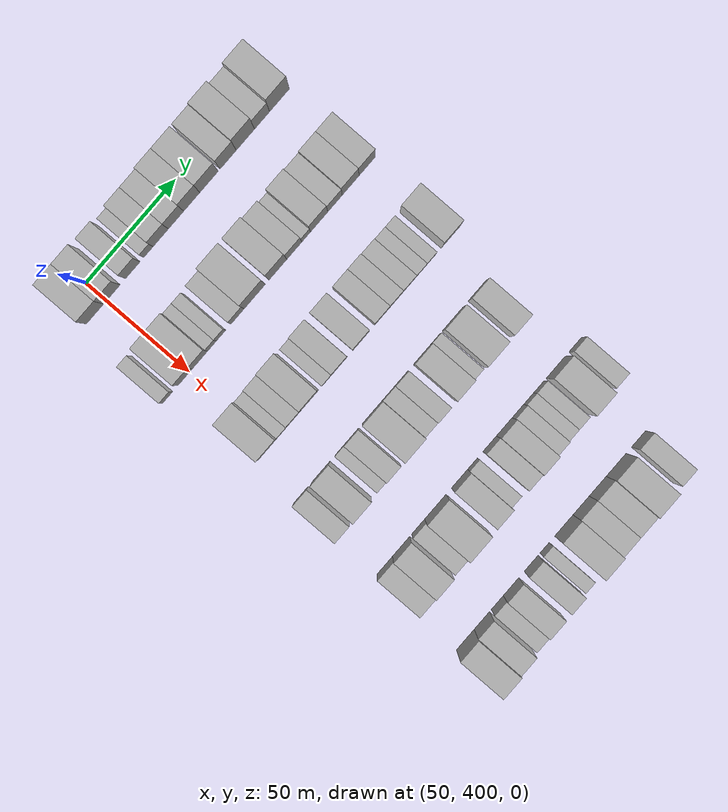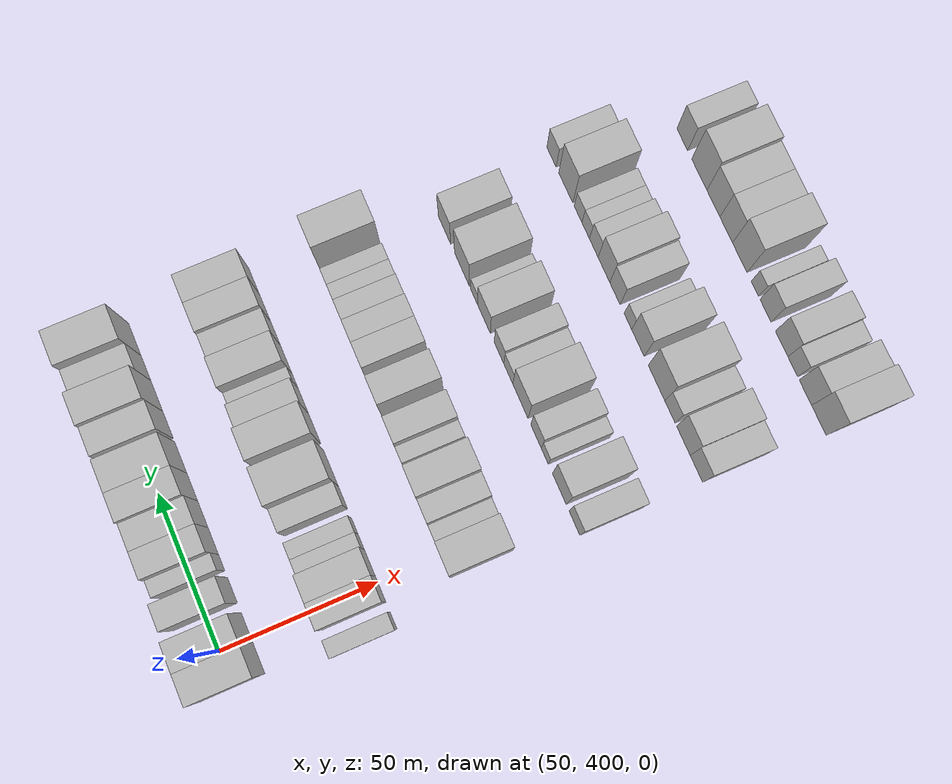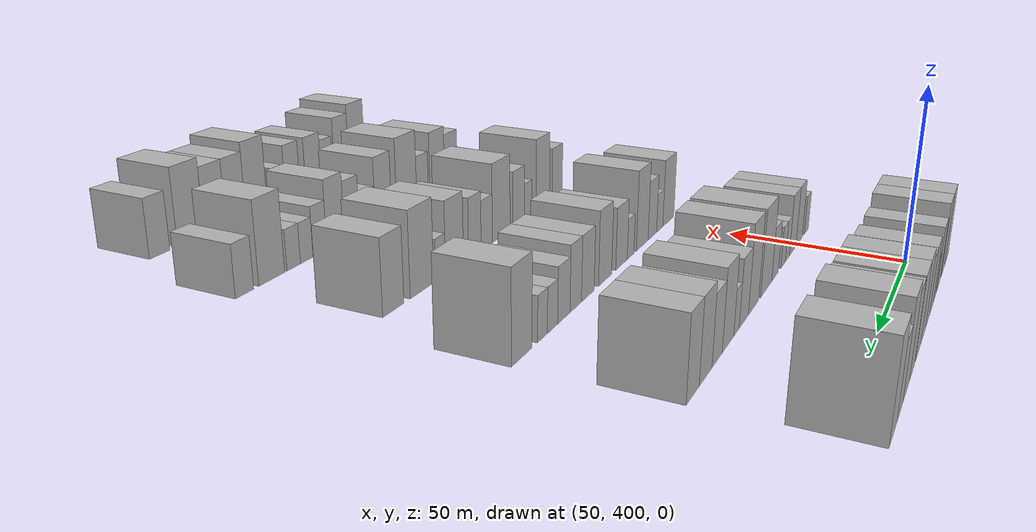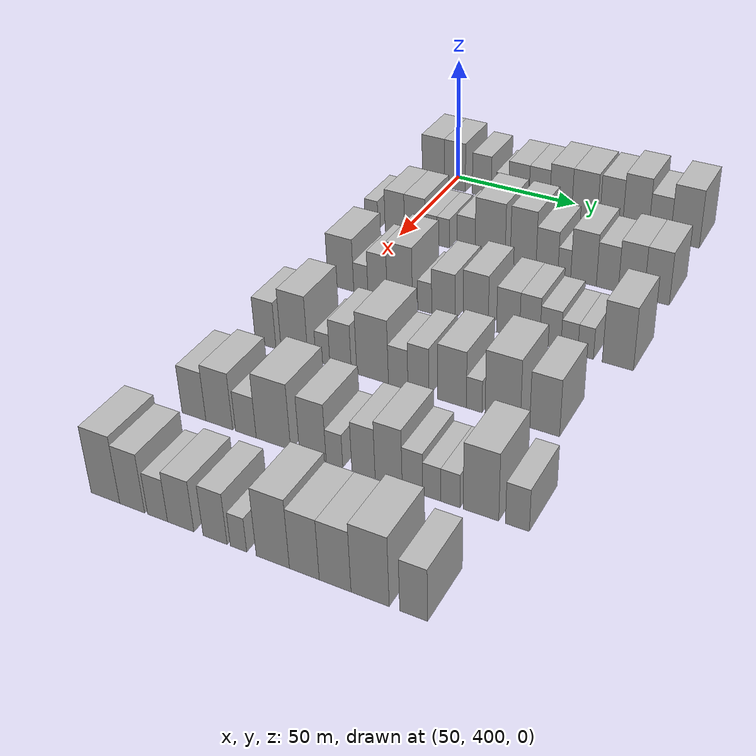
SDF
<sdf version="1.6">
 <world name="default">
  <model name="building_107">
   <static>1</static>
   <pose>50.0000 393.6798 0 0.000000 0.000000 0.000000</pose>
   <link name="link">
    <pose>0 0 10.50 0 0 0</pose>
    <collision name="collision"><geometry><box><size>20.0000 9.6630 21.0000</size></box></geometry></collision>
    <visual name="visual">
     <cast_shadows>0</cast_shadows>
     <geometry><box><size>20.0000 9.6630 21.0000</size></box></geometry>
     <material>
      <script>
       <uri>model://HANNAS_wall/materials/scripts</uri>
       <uri>model://HANNAS_wall/materials/textures</uri>
       <name>vrc/HANNAS_wall</name>
      </script>
     </material>
    </visual>
   </link>
  </model>
  <model name="building_108">
   <static>1</static>
   <pose>50.0000 403.1124 0 0.000000 0.000000 0.000000</pose>
   <link name="link">
    <pose>0 0 10.50 0 0 0</pose>
    <collision name="collision"><geometry><box><size>20.0000 9.2023 21.0000</size></box></geometry></collision>
    <visual name="visual">
     <cast_shadows>0</cast_shadows>
     <geometry><box><size>20.0000 9.2023 21.0000</size></box></geometry>
     <material>
      <script>
       <uri>model://HANNAS_wall/materials/scripts</uri>
       <uri>model://HANNAS_wall/materials/textures</uri>
       <name>vrc/HANNAS_wall</name>
      </script>
     </material>
    </visual>
   </link>
  </model>
  <model name="building_109">
   <static>1</static>
   <pose>50.0000 414.7818 0 0.000000 0.000000 0.000000</pose>
   <link name="link">
    <pose>0 0 9.00 0 0 0</pose>
    <collision name="collision"><geometry><box><size>20.0000 8.1363 18.0000</size></box></geometry></collision>
    <visual name="visual">
     <cast_shadows>0</cast_shadows>
     <geometry><box><size>20.0000 8.1363 18.0000</size></box></geometry>
     <material>
      <script>
       <uri>model://HANNAS_wall/materials/scripts</uri>
       <uri>model://HANNAS_wall/materials/textures</uri>
       <name>vrc/HANNAS_wall</name>
      </script>
     </material>
    </visual>
   </link>
  </model>
  <model name="building_110">
   <static>1</static>
   <pose>50.0000 423.4730 0 0.000000 0.000000 0.000000</pose>
   <link name="link">
    <pose>0 0 6.00 0 0 0</pose>
    <collision name="collision"><geometry><box><size>20.0000 5.2460 12.0000</size></box></geometry></collision>
    <visual name="visual">
     <cast_shadows>0</cast_shadows>
     <geometry><box><size>20.0000 5.2460 12.0000</size></box></geometry>
     <material>
      <script>
       <uri>model://HANNAS_wall/materials/scripts</uri>
       <uri>model://HANNAS_wall/materials/textures</uri>
       <name>vrc/HANNAS_wall</name>
      </script>
     </material>
    </visual>
   </link>
  </model>
  <model name="building_111">
   <static>1</static>
   <pose>50.0000 430.3826 0 0.000000 0.000000 0.000000</pose>
   <link name="link">
    <pose>0 0 9.00 0 0 0</pose>
    <collision name="collision"><geometry><box><size>20.0000 8.5733 18.0000</size></box></geometry></collision>
    <visual name="visual">
     <cast_shadows>0</cast_shadows>
     <geometry><box><size>20.0000 8.5733 18.0000</size></box></geometry>
     <material>
      <script>
       <uri>model://HANNAS_wall/materials/scripts</uri>
       <uri>model://HANNAS_wall/materials/textures</uri>
       <name>vrc/HANNAS_wall</name>
      </script>
     </material>
    </visual>
   </link>
  </model>
  <model name="building_112">
   <static>1</static>
   <pose>50.0000 438.9476 0 0.000000 0.000000 0.000000</pose>
   <link name="link">
    <pose>0 0 9.00 0 0 0</pose>
    <collision name="collision"><geometry><box><size>20.0000 8.5567 18.0000</size></box></geometry></collision>
    <visual name="visual">
     <cast_shadows>0</cast_shadows>
     <geometry><box><size>20.0000 8.5567 18.0000</size></box></geometry>
     <material>
      <script>
       <uri>model://HANNAS_wall/materials/scripts</uri>
       <uri>model://HANNAS_wall/materials/textures</uri>
       <name>vrc/HANNAS_wall</name>
      </script>
     </material>
    </visual>
   </link>
  </model>
  <model name="building_113">
   <static>1</static>
   <pose>50.0000 447.7364 0 0.000000 0.000000 0.000000</pose>
   <link name="link">
    <pose>0 0 10.50 0 0 0</pose>
    <collision name="collision"><geometry><box><size>20.0000 9.0210 21.0000</size></box></geometry></collision>
    <visual name="visual">
     <cast_shadows>0</cast_shadows>
     <geometry><box><size>20.0000 9.0210 21.0000</size></box></geometry>
     <material>
      <script>
       <uri>model://HANNAS_wall/materials/scripts</uri>
       <uri>model://HANNAS_wall/materials/textures</uri>
       <name>vrc/HANNAS_wall</name>
      </script>
     </material>
    </visual>
   </link>
  </model>
  <model name="building_114">
   <static>1</static>
   <pose>50.0000 457.3756 0 0.000000 0.000000 0.000000</pose>
   <link name="link">
    <pose>0 0 10.50 0 0 0</pose>
    <collision name="collision"><geometry><box><size>20.0000 10.2574 21.0000</size></box></geometry></collision>
    <visual name="visual">
     <cast_shadows>0</cast_shadows>
     <geometry><box><size>20.0000 10.2574 21.0000</size></box></geometry>
     <material>
      <script>
       <uri>model://HANNAS_wall/materials/scripts</uri>
       <uri>model://HANNAS_wall/materials/textures</uri>
       <name>vrc/HANNAS_wall</name>
      </script>
     </material>
    </visual>
   </link>
  </model>
  <model name="building_115">
   <static>1</static>
   <pose>50.0000 468.0371 0 0.000000 0.000000 0.000000</pose>
   <link name="link">
    <pose>0 0 10.50 0 0 0</pose>
    <collision name="collision"><geometry><box><size>20.0000 9.0657 21.0000</size></box></geometry></collision>
    <visual name="visual">
     <cast_shadows>0</cast_shadows>
     <geometry><box><size>20.0000 9.0657 21.0000</size></box></geometry>
     <material>
      <script>
       <uri>model://HANNAS_wall/materials/scripts</uri>
       <uri>model://HANNAS_wall/materials/textures</uri>
       <name>vrc/HANNAS_wall</name>
      </script>
     </material>
    </visual>
   </link>
  </model>
  <model name="building_116">
   <static>1</static>
   <pose>50.0000 477.6717 0 0.000000 0.000000 0.000000</pose>
   <link name="link">
    <pose>0 0 12.00 0 0 0</pose>
    <collision name="collision"><geometry><box><size>20.0000 10.2034 24.0000</size></box></geometry></collision>
    <visual name="visual">
     <cast_shadows>0</cast_shadows>
     <geometry><box><size>20.0000 10.2034 24.0000</size></box></geometry>
     <material>
      <script>
       <uri>model://HANNAS_wall/materials/scripts</uri>
       <uri>model://HANNAS_wall/materials/textures</uri>
       <name>vrc/HANNAS_wall</name>
      </script>
     </material>
    </visual>
   </link>
  </model>
  <model name="building_117">
   <static>1</static>
   <pose>50.0000 486.9649 0 0.000000 0.000000 0.000000</pose>
   <link name="link">
    <pose>0 0 9.00 0 0 0</pose>
    <collision name="collision"><geometry><box><size>20.0000 8.3829 18.0000</size></box></geometry></collision>
    <visual name="visual">
     <cast_shadows>0</cast_shadows>
     <geometry><box><size>20.0000 8.3829 18.0000</size></box></geometry>
     <material>
      <script>
       <uri>model://HANNAS_wall/materials/scripts</uri>
       <uri>model://HANNAS_wall/materials/textures</uri>
       <name>vrc/HANNAS_wall</name>
      </script>
     </material>
    </visual>
   </link>
  </model>
  <model name="building_118">
   <static>1</static>
   <pose>50.0000 496.6654 0 0.000000 0.000000 0.000000</pose>
   <link name="link">
    <pose>0 0 12.00 0 0 0</pose>
    <collision name="collision"><geometry><box><size>20.0000 11.0180 24.0000</size></box></geometry></collision>
    <visual name="visual">
     <cast_shadows>0</cast_shadows>
     <geometry><box><size>20.0000 11.0180 24.0000</size></box></geometry>
     <material>
      <script>
       <uri>model://HANNAS_wall/materials/scripts</uri>
       <uri>model://HANNAS_wall/materials/textures</uri>
       <name>vrc/HANNAS_wall</name>
      </script>
     </material>
    </visual>
   </link>
  </model>
  <model name="building_239">
   <static>1</static>
   <pose>90.0000 388.0241 0 0.000000 0.000000 0.000000</pose>
   <link name="link">
    <pose>0 0 6.00 0 0 0</pose>
    <collision name="collision"><geometry><box><size>20.0000 5.4615 12.0000</size></box></geometry></collision>
    <visual name="visual">
     <cast_shadows>0</cast_shadows>
     <geometry><box><size>20.0000 5.4615 12.0000</size></box></geometry>
     <material>
      <script>
       <uri>model://HANNAS_wall/materials/scripts</uri>
       <uri>model://HANNAS_wall/materials/textures</uri>
       <name>vrc/HANNAS_wall</name>
      </script>
     </material>
    </visual>
   </link>
  </model>
  <model name="building_240">
   <static>1</static>
   <pose>90.0000 397.8264 0 0.000000 0.000000 0.000000</pose>
   <link name="link">
    <pose>0 0 9.00 0 0 0</pose>
    <collision name="collision"><geometry><box><size>20.0000 8.1431 18.0000</size></box></geometry></collision>
    <visual name="visual">
     <cast_shadows>0</cast_shadows>
     <geometry><box><size>20.0000 8.1431 18.0000</size></box></geometry>
     <material>
      <script>
       <uri>model://HANNAS_wall/materials/scripts</uri>
       <uri>model://HANNAS_wall/materials/textures</uri>
       <name>vrc/HANNAS_wall</name>
      </script>
     </material>
    </visual>
   </link>
  </model>
  <model name="building_241">
   <static>1</static>
   <pose>90.0000 406.1537 0 0.000000 0.000000 0.000000</pose>
   <link name="link">
    <pose>0 0 9.00 0 0 0</pose>
    <collision name="collision"><geometry><box><size>20.0000 8.5114 18.0000</size></box></geometry></collision>
    <visual name="visual">
     <cast_shadows>0</cast_shadows>
     <geometry><box><size>20.0000 8.5114 18.0000</size></box></geometry>
     <material>
      <script>
       <uri>model://HANNAS_wall/materials/scripts</uri>
       <uri>model://HANNAS_wall/materials/textures</uri>
       <name>vrc/HANNAS_wall</name>
      </script>
     </material>
    </visual>
   </link>
  </model>
  <model name="building_242">
   <static>1</static>
   <pose>90.0000 412.8248 0 0.000000 0.000000 0.000000</pose>
   <link name="link">
    <pose>0 0 6.00 0 0 0</pose>
    <collision name="collision"><geometry><box><size>20.0000 4.8308 12.0000</size></box></geometry></collision>
    <visual name="visual">
     <cast_shadows>0</cast_shadows>
     <geometry><box><size>20.0000 4.8308 12.0000</size></box></geometry>
     <material>
      <script>
       <uri>model://HANNAS_wall/materials/scripts</uri>
       <uri>model://HANNAS_wall/materials/textures</uri>
       <name>vrc/HANNAS_wall</name>
      </script>
     </material>
    </visual>
   </link>
  </model>
  <model name="building_243">
   <static>1</static>
   <pose>90.0000 417.8069 0 0.000000 0.000000 0.000000</pose>
   <link name="link">
    <pose>0 0 6.00 0 0 0</pose>
    <collision name="collision"><geometry><box><size>20.0000 5.1335 12.0000</size></box></geometry></collision>
    <visual name="visual">
     <cast_shadows>0</cast_shadows>
     <geometry><box><size>20.0000 5.1335 12.0000</size></box></geometry>
     <material>
      <script>
       <uri>model://HANNAS_wall/materials/scripts</uri>
       <uri>model://HANNAS_wall/materials/textures</uri>
       <name>vrc/HANNAS_wall</name>
      </script>
     </material>
    </visual>
   </link>
  </model>
  <model name="building_244">
   <static>1</static>
   <pose>90.0000 427.0387 0 0.000000 0.000000 0.000000</pose>
   <link name="link">
    <pose>0 0 7.50 0 0 0</pose>
    <collision name="collision"><geometry><box><size>20.0000 7.3300 15.0000</size></box></geometry></collision>
    <visual name="visual">
     <cast_shadows>0</cast_shadows>
     <geometry><box><size>20.0000 7.3300 15.0000</size></box></geometry>
     <material>
      <script>
       <uri>model://HANNAS_wall/materials/scripts</uri>
       <uri>model://HANNAS_wall/materials/textures</uri>
       <name>vrc/HANNAS_wall</name>
      </script>
     </material>
    </visual>
   </link>
  </model>
  <model name="building_245">
   <static>1</static>
   <pose>90.0000 436.6165 0 0.000000 0.000000 0.000000</pose>
   <link name="link">
    <pose>0 0 12.00 0 0 0</pose>
    <collision name="collision"><geometry><box><size>20.0000 11.8256 24.0000</size></box></geometry></collision>
    <visual name="visual">
     <cast_shadows>0</cast_shadows>
     <geometry><box><size>20.0000 11.8256 24.0000</size></box></geometry>
     <material>
      <script>
       <uri>model://HANNAS_wall/materials/scripts</uri>
       <uri>model://HANNAS_wall/materials/textures</uri>
       <name>vrc/HANNAS_wall</name>
      </script>
     </material>
    </visual>
   </link>
  </model>
  <model name="building_246">
   <static>1</static>
   <pose>90.0000 449.5167 0 0.000000 0.000000 0.000000</pose>
   <link name="link">
    <pose>0 0 12.00 0 0 0</pose>
    <collision name="collision"><geometry><box><size>20.0000 9.9747 24.0000</size></box></geometry></collision>
    <visual name="visual">
     <cast_shadows>0</cast_shadows>
     <geometry><box><size>20.0000 9.9747 24.0000</size></box></geometry>
     <material>
      <script>
       <uri>model://HANNAS_wall/materials/scripts</uri>
       <uri>model://HANNAS_wall/materials/textures</uri>
       <name>vrc/HANNAS_wall</name>
      </script>
     </material>
    </visual>
   </link>
  </model>
  <model name="building_247">
   <static>1</static>
   <pose>90.0000 458.6944 0 0.000000 0.000000 0.000000</pose>
   <link name="link">
    <pose>0 0 9.00 0 0 0</pose>
    <collision name="collision"><geometry><box><size>20.0000 8.3806 18.0000</size></box></geometry></collision>
    <visual name="visual">
     <cast_shadows>0</cast_shadows>
     <geometry><box><size>20.0000 8.3806 18.0000</size></box></geometry>
     <material>
      <script>
       <uri>model://HANNAS_wall/materials/scripts</uri>
       <uri>model://HANNAS_wall/materials/textures</uri>
       <name>vrc/HANNAS_wall</name>
      </script>
     </material>
    </visual>
   </link>
  </model>
  <model name="building_248">
   <static>1</static>
   <pose>90.0000 465.2968 0 0.000000 0.000000 0.000000</pose>
   <link name="link">
    <pose>0 0 6.00 0 0 0</pose>
    <collision name="collision"><geometry><box><size>20.0000 4.8242 12.0000</size></box></geometry></collision>
    <visual name="visual">
     <cast_shadows>0</cast_shadows>
     <geometry><box><size>20.0000 4.8242 12.0000</size></box></geometry>
     <material>
      <script>
       <uri>model://HANNAS_wall/materials/scripts</uri>
       <uri>model://HANNAS_wall/materials/textures</uri>
       <name>vrc/HANNAS_wall</name>
      </script>
     </material>
    </visual>
   </link>
  </model>
  <model name="building_249">
   <static>1</static>
   <pose>90.0000 472.4973 0 0.000000 0.000000 0.000000</pose>
   <link name="link">
    <pose>0 0 10.50 0 0 0</pose>
    <collision name="collision"><geometry><box><size>20.0000 9.5768 21.0000</size></box></geometry></collision>
    <visual name="visual">
     <cast_shadows>0</cast_shadows>
     <geometry><box><size>20.0000 9.5768 21.0000</size></box></geometry>
     <material>
      <script>
       <uri>model://HANNAS_wall/materials/scripts</uri>
       <uri>model://HANNAS_wall/materials/textures</uri>
       <name>vrc/HANNAS_wall</name>
      </script>
     </material>
    </visual>
   </link>
  </model>
  <model name="building_250">
   <static>1</static>
   <pose>90.0000 481.3107 0 0.000000 0.000000 0.000000</pose>
   <link name="link">
    <pose>0 0 9.00 0 0 0</pose>
    <collision name="collision"><geometry><box><size>20.0000 8.0500 18.0000</size></box></geometry></collision>
    <visual name="visual">
     <cast_shadows>0</cast_shadows>
     <geometry><box><size>20.0000 8.0500 18.0000</size></box></geometry>
     <material>
      <script>
       <uri>model://HANNAS_wall/materials/scripts</uri>
       <uri>model://HANNAS_wall/materials/textures</uri>
       <name>vrc/HANNAS_wall</name>
      </script>
     </material>
    </visual>
   </link>
  </model>
  <model name="building_251">
   <static>1</static>
   <pose>90.0000 490.0114 0 0.000000 0.000000 0.000000</pose>
   <link name="link">
    <pose>0 0 10.50 0 0 0</pose>
    <collision name="collision"><geometry><box><size>20.0000 9.3514 21.0000</size></box></geometry></collision>
    <visual name="visual">
     <cast_shadows>0</cast_shadows>
     <geometry><box><size>20.0000 9.3514 21.0000</size></box></geometry>
     <material>
      <script>
       <uri>model://HANNAS_wall/materials/scripts</uri>
       <uri>model://HANNAS_wall/materials/textures</uri>
       <name>vrc/HANNAS_wall</name>
      </script>
     </material>
    </visual>
   </link>
  </model>
  <model name="building_252">
   <static>1</static>
   <pose>90.0000 499.2103 0 0.000000 0.000000 0.000000</pose>
   <link name="link">
    <pose>0 0 10.50 0 0 0</pose>
    <collision name="collision"><geometry><box><size>20.0000 9.0464 21.0000</size></box></geometry></collision>
    <visual name="visual">
     <cast_shadows>0</cast_shadows>
     <geometry><box><size>20.0000 9.0464 21.0000</size></box></geometry>
     <material>
      <script>
       <uri>model://HANNAS_wall/materials/scripts</uri>
       <uri>model://HANNAS_wall/materials/textures</uri>
       <name>vrc/HANNAS_wall</name>
      </script>
     </material>
    </visual>
   </link>
  </model>
  <model name="building_372">
   <static>1</static>
   <pose>130.0000 397.9656 0 0.000000 0.000000 0.000000</pose>
   <link name="link">
    <pose>0 0 10.50 0 0 0</pose>
    <collision name="collision"><geometry><box><size>20.0000 10.3164 21.0000</size></box></geometry></collision>
    <visual name="visual">
     <cast_shadows>0</cast_shadows>
     <geometry><box><size>20.0000 10.3164 21.0000</size></box></geometry>
     <material>
      <script>
       <uri>model://HANNAS_wall/materials/scripts</uri>
       <uri>model://HANNAS_wall/materials/textures</uri>
       <name>vrc/HANNAS_wall</name>
      </script>
     </material>
    </visual>
   </link>
  </model>
  <model name="building_373">
   <static>1</static>
   <pose>130.0000 405.9312 0 0.000000 0.000000 0.000000</pose>
   <link name="link">
    <pose>0 0 6.00 0 0 0</pose>
    <collision name="collision"><geometry><box><size>20.0000 5.6148 12.0000</size></box></geometry></collision>
    <visual name="visual">
     <cast_shadows>0</cast_shadows>
     <geometry><box><size>20.0000 5.6148 12.0000</size></box></geometry>
     <material>
      <script>
       <uri>model://HANNAS_wall/materials/scripts</uri>
       <uri>model://HANNAS_wall/materials/textures</uri>
       <name>vrc/HANNAS_wall</name>
      </script>
     </material>
    </visual>
   </link>
  </model>
  <model name="building_374">
   <static>1</static>
   <pose>130.0000 412.4982 0 0.000000 0.000000 0.000000</pose>
   <link name="link">
    <pose>0 0 9.00 0 0 0</pose>
    <collision name="collision"><geometry><box><size>20.0000 7.5192 18.0000</size></box></geometry></collision>
    <visual name="visual">
     <cast_shadows>0</cast_shadows>
     <geometry><box><size>20.0000 7.5192 18.0000</size></box></geometry>
     <material>
      <script>
       <uri>model://HANNAS_wall/materials/scripts</uri>
       <uri>model://HANNAS_wall/materials/textures</uri>
       <name>vrc/HANNAS_wall</name>
      </script>
     </material>
    </visual>
   </link>
  </model>
  <model name="building_375">
   <static>1</static>
   <pose>130.0000 421.1423 0 0.000000 0.000000 0.000000</pose>
   <link name="link">
    <pose>0 0 12.00 0 0 0</pose>
    <collision name="collision"><geometry><box><size>20.0000 9.7689 24.0000</size></box></geometry></collision>
    <visual name="visual">
     <cast_shadows>0</cast_shadows>
     <geometry><box><size>20.0000 9.7689 24.0000</size></box></geometry>
     <material>
      <script>
       <uri>model://HANNAS_wall/materials/scripts</uri>
       <uri>model://HANNAS_wall/materials/textures</uri>
       <name>vrc/HANNAS_wall</name>
      </script>
     </material>
    </visual>
   </link>
  </model>
  <model name="building_376">
   <static>1</static>
   <pose>130.0000 430.6734 0 0.000000 0.000000 0.000000</pose>
   <link name="link">
    <pose>0 0 6.00 0 0 0</pose>
    <collision name="collision"><geometry><box><size>20.0000 5.2932 12.0000</size></box></geometry></collision>
    <visual name="visual">
     <cast_shadows>0</cast_shadows>
     <geometry><box><size>20.0000 5.2932 12.0000</size></box></geometry>
     <material>
      <script>
       <uri>model://HANNAS_wall/materials/scripts</uri>
       <uri>model://HANNAS_wall/materials/textures</uri>
       <name>vrc/HANNAS_wall</name>
      </script>
     </material>
    </visual>
   </link>
  </model>
  <model name="building_377">
   <static>1</static>
   <pose>130.0000 437.6618 0 0.000000 0.000000 0.000000</pose>
   <link name="link">
    <pose>0 0 9.00 0 0 0</pose>
    <collision name="collision"><geometry><box><size>20.0000 8.6837 18.0000</size></box></geometry></collision>
    <visual name="visual">
     <cast_shadows>0</cast_shadows>
     <geometry><box><size>20.0000 8.6837 18.0000</size></box></geometry>
     <material>
      <script>
       <uri>model://HANNAS_wall/materials/scripts</uri>
       <uri>model://HANNAS_wall/materials/textures</uri>
       <name>vrc/HANNAS_wall</name>
      </script>
     </material>
    </visual>
   </link>
  </model>
  <model name="building_378">
   <static>1</static>
   <pose>130.0000 449.6315 0 0.000000 0.000000 0.000000</pose>
   <link name="link">
    <pose>0 0 10.50 0 0 0</pose>
    <collision name="collision"><geometry><box><size>20.0000 9.2556 21.0000</size></box></geometry></collision>
    <visual name="visual">
     <cast_shadows>0</cast_shadows>
     <geometry><box><size>20.0000 9.2556 21.0000</size></box></geometry>
     <material>
      <script>
       <uri>model://HANNAS_wall/materials/scripts</uri>
       <uri>model://HANNAS_wall/materials/textures</uri>
       <name>vrc/HANNAS_wall</name>
      </script>
     </material>
    </visual>
   </link>
  </model>
  <model name="building_379">
   <static>1</static>
   <pose>130.0000 461.3996 0 0.000000 0.000000 0.000000</pose>
   <link name="link">
    <pose>0 0 9.00 0 0 0</pose>
    <collision name="collision"><geometry><box><size>20.0000 8.2807 18.0000</size></box></geometry></collision>
    <visual name="visual">
     <cast_shadows>0</cast_shadows>
     <geometry><box><size>20.0000 8.2807 18.0000</size></box></geometry>
     <material>
      <script>
       <uri>model://HANNAS_wall/materials/scripts</uri>
       <uri>model://HANNAS_wall/materials/textures</uri>
       <name>vrc/HANNAS_wall</name>
      </script>
     </material>
    </visual>
   </link>
  </model>
  <model name="building_380">
   <static>1</static>
   <pose>130.0000 469.1529 0 0.000000 0.000000 0.000000</pose>
   <link name="link">
    <pose>0 0 9.00 0 0 0</pose>
    <collision name="collision"><geometry><box><size>20.0000 7.2259 18.0000</size></box></geometry></collision>
    <visual name="visual">
     <cast_shadows>0</cast_shadows>
     <geometry><box><size>20.0000 7.2259 18.0000</size></box></geometry>
     <material>
      <script>
       <uri>model://HANNAS_wall/materials/scripts</uri>
       <uri>model://HANNAS_wall/materials/textures</uri>
       <name>vrc/HANNAS_wall</name>
      </script>
     </material>
    </visual>
   </link>
  </model>
  <model name="building_381">
   <static>1</static>
   <pose>130.0000 476.4479 0 0.000000 0.000000 0.000000</pose>
   <link name="link">
    <pose>0 0 7.50 0 0 0</pose>
    <collision name="collision"><geometry><box><size>20.0000 7.3641 15.0000</size></box></geometry></collision>
    <visual name="visual">
     <cast_shadows>0</cast_shadows>
     <geometry><box><size>20.0000 7.3641 15.0000</size></box></geometry>
     <material>
      <script>
       <uri>model://HANNAS_wall/materials/scripts</uri>
       <uri>model://HANNAS_wall/materials/textures</uri>
       <name>vrc/HANNAS_wall</name>
      </script>
     </material>
    </visual>
   </link>
  </model>
  <model name="building_382">
   <static>1</static>
   <pose>130.0000 483.0537 0 0.000000 0.000000 0.000000</pose>
   <link name="link">
    <pose>0 0 6.00 0 0 0</pose>
    <collision name="collision"><geometry><box><size>20.0000 5.8475 12.0000</size></box></geometry></collision>
    <visual name="visual">
     <cast_shadows>0</cast_shadows>
     <geometry><box><size>20.0000 5.8475 12.0000</size></box></geometry>
     <material>
      <script>
       <uri>model://HANNAS_wall/materials/scripts</uri>
       <uri>model://HANNAS_wall/materials/textures</uri>
       <name>vrc/HANNAS_wall</name>
      </script>
     </material>
    </visual>
   </link>
  </model>
  <model name="building_383">
   <static>1</static>
   <pose>130.0000 488.6672 0 0.000000 0.000000 0.000000</pose>
   <link name="link">
    <pose>0 0 6.00 0 0 0</pose>
    <collision name="collision"><geometry><box><size>20.0000 5.3795 12.0000</size></box></geometry></collision>
    <visual name="visual">
     <cast_shadows>0</cast_shadows>
     <geometry><box><size>20.0000 5.3795 12.0000</size></box></geometry>
     <material>
      <script>
       <uri>model://HANNAS_wall/materials/scripts</uri>
       <uri>model://HANNAS_wall/materials/textures</uri>
       <name>vrc/HANNAS_wall</name>
      </script>
     </material>
    </visual>
   </link>
  </model>
  <model name="building_384">
   <static>1</static>
   <pose>130.0000 499.6014 0 0.000000 0.000000 0.000000</pose>
   <link name="link">
    <pose>0 0 12.00 0 0 0</pose>
    <collision name="collision"><geometry><box><size>20.0000 10.4891 24.0000</size></box></geometry></collision>
    <visual name="visual">
     <cast_shadows>0</cast_shadows>
     <geometry><box><size>20.0000 10.4891 24.0000</size></box></geometry>
     <material>
      <script>
       <uri>model://HANNAS_wall/materials/scripts</uri>
       <uri>model://HANNAS_wall/materials/textures</uri>
       <name>vrc/HANNAS_wall</name>
      </script>
     </material>
    </visual>
   </link>
  </model>
  <model name="building_508">
   <static>1</static>
   <pose>170.0000 392.9907 0 0.000000 0.000000 0.000000</pose>
   <link name="link">
    <pose>0 0 9.00 0 0 0</pose>
    <collision name="collision"><geometry><box><size>20.0000 7.8994 18.0000</size></box></geometry></collision>
    <visual name="visual">
     <cast_shadows>0</cast_shadows>
     <geometry><box><size>20.0000 7.8994 18.0000</size></box></geometry>
     <material>
      <script>
       <uri>model://HANNAS_wall/materials/scripts</uri>
       <uri>model://HANNAS_wall/materials/textures</uri>
       <name>vrc/HANNAS_wall</name>
      </script>
     </material>
    </visual>
   </link>
  </model>
  <model name="building_509">
   <static>1</static>
   <pose>170.0000 403.9737 0 0.000000 0.000000 0.000000</pose>
   <link name="link">
    <pose>0 0 12.00 0 0 0</pose>
    <collision name="collision"><geometry><box><size>20.0000 10.0667 24.0000</size></box></geometry></collision>
    <visual name="visual">
     <cast_shadows>0</cast_shadows>
     <geometry><box><size>20.0000 10.0667 24.0000</size></box></geometry>
     <material>
      <script>
       <uri>model://HANNAS_wall/materials/scripts</uri>
       <uri>model://HANNAS_wall/materials/textures</uri>
       <name>vrc/HANNAS_wall</name>
      </script>
     </material>
    </visual>
   </link>
  </model>
  <model name="building_510">
   <static>1</static>
   <pose>170.0000 414.6080 0 0.000000 0.000000 0.000000</pose>
   <link name="link">
    <pose>0 0 6.00 0 0 0</pose>
    <collision name="collision"><geometry><box><size>20.0000 5.2018 12.0000</size></box></geometry></collision>
    <visual name="visual">
     <cast_shadows>0</cast_shadows>
     <geometry><box><size>20.0000 5.2018 12.0000</size></box></geometry>
     <material>
      <script>
       <uri>model://HANNAS_wall/materials/scripts</uri>
       <uri>model://HANNAS_wall/materials/textures</uri>
       <name>vrc/HANNAS_wall</name>
      </script>
     </material>
    </visual>
   </link>
  </model>
  <model name="building_511">
   <static>1</static>
   <pose>170.0000 421.1204 0 0.000000 0.000000 0.000000</pose>
   <link name="link">
    <pose>0 0 9.00 0 0 0</pose>
    <collision name="collision"><geometry><box><size>20.0000 7.8230 18.0000</size></box></geometry></collision>
    <visual name="visual">
     <cast_shadows>0</cast_shadows>
     <geometry><box><size>20.0000 7.8230 18.0000</size></box></geometry>
     <material>
      <script>
       <uri>model://HANNAS_wall/materials/scripts</uri>
       <uri>model://HANNAS_wall/materials/textures</uri>
       <name>vrc/HANNAS_wall</name>
      </script>
     </material>
    </visual>
   </link>
  </model>
  <model name="building_512">
   <static>1</static>
   <pose>170.0000 432.6968 0 0.000000 0.000000 0.000000</pose>
   <link name="link">
    <pose>0 0 12.00 0 0 0</pose>
    <collision name="collision"><geometry><box><size>20.0000 11.3298 24.0000</size></box></geometry></collision>
    <visual name="visual">
     <cast_shadows>0</cast_shadows>
     <geometry><box><size>20.0000 11.3298 24.0000</size></box></geometry>
     <material>
      <script>
       <uri>model://HANNAS_wall/materials/scripts</uri>
       <uri>model://HANNAS_wall/materials/textures</uri>
       <name>vrc/HANNAS_wall</name>
      </script>
     </material>
    </visual>
   </link>
  </model>
  <model name="building_513">
   <static>1</static>
   <pose>170.0000 441.7993 0 0.000000 0.000000 0.000000</pose>
   <link name="link">
    <pose>0 0 7.50 0 0 0</pose>
    <collision name="collision"><geometry><box><size>20.0000 6.8752 15.0000</size></box></geometry></collision>
    <visual name="visual">
     <cast_shadows>0</cast_shadows>
     <geometry><box><size>20.0000 6.8752 15.0000</size></box></geometry>
     <material>
      <script>
       <uri>model://HANNAS_wall/materials/scripts</uri>
       <uri>model://HANNAS_wall/materials/textures</uri>
       <name>vrc/HANNAS_wall</name>
      </script>
     </material>
    </visual>
   </link>
  </model>
  <model name="building_514">
   <static>1</static>
   <pose>170.0000 448.8794 0 0.000000 0.000000 0.000000</pose>
   <link name="link">
    <pose>0 0 9.00 0 0 0</pose>
    <collision name="collision"><geometry><box><size>20.0000 7.2851 18.0000</size></box></geometry></collision>
    <visual name="visual">
     <cast_shadows>0</cast_shadows>
     <geometry><box><size>20.0000 7.2851 18.0000</size></box></geometry>
     <material>
      <script>
       <uri>model://HANNAS_wall/materials/scripts</uri>
       <uri>model://HANNAS_wall/materials/textures</uri>
       <name>vrc/HANNAS_wall</name>
      </script>
     </material>
    </visual>
   </link>
  </model>
  <model name="building_515">
   <static>1</static>
   <pose>170.0000 460.4264 0 0.000000 0.000000 0.000000</pose>
   <link name="link">
    <pose>0 0 10.50 0 0 0</pose>
    <collision name="collision"><geometry><box><size>20.0000 9.8089 21.0000</size></box></geometry></collision>
    <visual name="visual">
     <cast_shadows>0</cast_shadows>
     <geometry><box><size>20.0000 9.8089 21.0000</size></box></geometry>
     <material>
      <script>
       <uri>model://HANNAS_wall/materials/scripts</uri>
       <uri>model://HANNAS_wall/materials/textures</uri>
       <name>vrc/HANNAS_wall</name>
      </script>
     </material>
    </visual>
   </link>
  </model>
  <model name="building_516">
   <static>1</static>
   <pose>170.0000 467.9535 0 0.000000 0.000000 0.000000</pose>
   <link name="link">
    <pose>0 0 6.00 0 0 0</pose>
    <collision name="collision"><geometry><box><size>20.0000 5.2454 12.0000</size></box></geometry></collision>
    <visual name="visual">
     <cast_shadows>0</cast_shadows>
     <geometry><box><size>20.0000 5.2454 12.0000</size></box></geometry>
     <material>
      <script>
       <uri>model://HANNAS_wall/materials/scripts</uri>
       <uri>model://HANNAS_wall/materials/textures</uri>
       <name>vrc/HANNAS_wall</name>
      </script>
     </material>
    </visual>
   </link>
  </model>
  <model name="building_517">
   <static>1</static>
   <pose>170.0000 477.3882 0 0.000000 0.000000 0.000000</pose>
   <link name="link">
    <pose>0 0 12.00 0 0 0</pose>
    <collision name="collision"><geometry><box><size>20.0000 11.6241 24.0000</size></box></geometry></collision>
    <visual name="visual">
     <cast_shadows>0</cast_shadows>
     <geometry><box><size>20.0000 11.6241 24.0000</size></box></geometry>
     <material>
      <script>
       <uri>model://HANNAS_wall/materials/scripts</uri>
       <uri>model://HANNAS_wall/materials/textures</uri>
       <name>vrc/HANNAS_wall</name>
      </script>
     </material>
    </visual>
   </link>
  </model>
  <model name="building_518">
   <static>1</static>
   <pose>170.0000 491.0262 0 0.000000 0.000000 0.000000</pose>
   <link name="link">
    <pose>0 0 10.50 0 0 0</pose>
    <collision name="collision"><geometry><box><size>20.0000 9.6518 21.0000</size></box></geometry></collision>
    <visual name="visual">
     <cast_shadows>0</cast_shadows>
     <geometry><box><size>20.0000 9.6518 21.0000</size></box></geometry>
     <material>
      <script>
       <uri>model://HANNAS_wall/materials/scripts</uri>
       <uri>model://HANNAS_wall/materials/textures</uri>
       <name>vrc/HANNAS_wall</name>
      </script>
     </material>
    </visual>
   </link>
  </model>
  <model name="building_647">
   <static>1</static>
   <pose>210.0000 393.2863 0 0.000000 0.000000 0.000000</pose>
   <link name="link">
    <pose>0 0 9.00 0 0 0</pose>
    <collision name="collision"><geometry><box><size>20.0000 8.6975 18.0000</size></box></geometry></collision>
    <visual name="visual">
     <cast_shadows>0</cast_shadows>
     <geometry><box><size>20.0000 8.6975 18.0000</size></box></geometry>
     <material>
      <script>
       <uri>model://HANNAS_wall/materials/scripts</uri>
       <uri>model://HANNAS_wall/materials/textures</uri>
       <name>vrc/HANNAS_wall</name>
      </script>
     </material>
    </visual>
   </link>
  </model>
  <model name="building_648">
   <static>1</static>
   <pose>210.0000 402.4640 0 0.000000 0.000000 0.000000</pose>
   <link name="link">
    <pose>0 0 10.50 0 0 0</pose>
    <collision name="collision"><geometry><box><size>20.0000 9.6577 21.0000</size></box></geometry></collision>
    <visual name="visual">
     <cast_shadows>0</cast_shadows>
     <geometry><box><size>20.0000 9.6577 21.0000</size></box></geometry>
     <material>
      <script>
       <uri>model://HANNAS_wall/materials/scripts</uri>
       <uri>model://HANNAS_wall/materials/textures</uri>
       <name>vrc/HANNAS_wall</name>
      </script>
     </material>
    </visual>
   </link>
  </model>
  <model name="building_649">
   <static>1</static>
   <pose>210.0000 411.9451 0 0.000000 0.000000 0.000000</pose>
   <link name="link">
    <pose>0 0 7.50 0 0 0</pose>
    <collision name="collision"><geometry><box><size>20.0000 7.3045 15.0000</size></box></geometry></collision>
    <visual name="visual">
     <cast_shadows>0</cast_shadows>
     <geometry><box><size>20.0000 7.3045 15.0000</size></box></geometry>
     <material>
      <script>
       <uri>model://HANNAS_wall/materials/scripts</uri>
       <uri>model://HANNAS_wall/materials/textures</uri>
       <name>vrc/HANNAS_wall</name>
      </script>
     </material>
    </visual>
   </link>
  </model>
  <model name="building_650">
   <static>1</static>
   <pose>210.0000 421.5695 0 0.000000 0.000000 0.000000</pose>
   <link name="link">
    <pose>0 0 12.00 0 0 0</pose>
    <collision name="collision"><geometry><box><size>20.0000 11.9444 24.0000</size></box></geometry></collision>
    <visual name="visual">
     <cast_shadows>0</cast_shadows>
     <geometry><box><size>20.0000 11.9444 24.0000</size></box></geometry>
     <material>
      <script>
       <uri>model://HANNAS_wall/materials/scripts</uri>
       <uri>model://HANNAS_wall/materials/textures</uri>
       <name>vrc/HANNAS_wall</name>
      </script>
     </material>
    </visual>
   </link>
  </model>
  <model name="building_651">
   <static>1</static>
   <pose>210.0000 435.0522 0 0.000000 0.000000 0.000000</pose>
   <link name="link">
    <pose>0 0 10.50 0 0 0</pose>
    <collision name="collision"><geometry><box><size>20.0000 9.0210 21.0000</size></box></geometry></collision>
    <visual name="visual">
     <cast_shadows>0</cast_shadows>
     <geometry><box><size>20.0000 9.0210 21.0000</size></box></geometry>
     <material>
      <script>
       <uri>model://HANNAS_wall/materials/scripts</uri>
       <uri>model://HANNAS_wall/materials/textures</uri>
       <name>vrc/HANNAS_wall</name>
      </script>
     </material>
    </visual>
   </link>
  </model>
  <model name="building_652">
   <static>1</static>
   <pose>210.0000 442.3267 0 0.000000 0.000000 0.000000</pose>
   <link name="link">
    <pose>0 0 6.00 0 0 0</pose>
    <collision name="collision"><geometry><box><size>20.0000 5.5279 12.0000</size></box></geometry></collision>
    <visual name="visual">
     <cast_shadows>0</cast_shadows>
     <geometry><box><size>20.0000 5.5279 12.0000</size></box></geometry>
     <material>
      <script>
       <uri>model://HANNAS_wall/materials/scripts</uri>
       <uri>model://HANNAS_wall/materials/textures</uri>
       <name>vrc/HANNAS_wall</name>
      </script>
     </material>
    </visual>
   </link>
  </model>
  <model name="building_653">
   <static>1</static>
   <pose>210.0000 451.8808 0 0.000000 0.000000 0.000000</pose>
   <link name="link">
    <pose>0 0 9.00 0 0 0</pose>
    <collision name="collision"><geometry><box><size>20.0000 7.5804 18.0000</size></box></geometry></collision>
    <visual name="visual">
     <cast_shadows>0</cast_shadows>
     <geometry><box><size>20.0000 7.5804 18.0000</size></box></geometry>
     <material>
      <script>
       <uri>model://HANNAS_wall/materials/scripts</uri>
       <uri>model://HANNAS_wall/materials/textures</uri>
       <name>vrc/HANNAS_wall</name>
      </script>
     </material>
    </visual>
   </link>
  </model>
  <model name="building_654">
   <static>1</static>
   <pose>210.0000 460.0227 0 0.000000 0.000000 0.000000</pose>
   <link name="link">
    <pose>0 0 10.50 0 0 0</pose>
    <collision name="collision"><geometry><box><size>20.0000 8.7033 21.0000</size></box></geometry></collision>
    <visual name="visual">
     <cast_shadows>0</cast_shadows>
     <geometry><box><size>20.0000 8.7033 21.0000</size></box></geometry>
     <material>
      <script>
       <uri>model://HANNAS_wall/materials/scripts</uri>
       <uri>model://HANNAS_wall/materials/textures</uri>
       <name>vrc/HANNAS_wall</name>
      </script>
     </material>
    </visual>
   </link>
  </model>
  <model name="building_655">
   <static>1</static>
   <pose>210.0000 467.6206 0 0.000000 0.000000 0.000000</pose>
   <link name="link">
    <pose>0 0 7.50 0 0 0</pose>
    <collision name="collision"><geometry><box><size>20.0000 6.4925 15.0000</size></box></geometry></collision>
    <visual name="visual">
     <cast_shadows>0</cast_shadows>
     <geometry><box><size>20.0000 6.4925 15.0000</size></box></geometry>
     <material>
      <script>
       <uri>model://HANNAS_wall/materials/scripts</uri>
       <uri>model://HANNAS_wall/materials/textures</uri>
       <name>vrc/HANNAS_wall</name>
      </script>
     </material>
    </visual>
   </link>
  </model>
  <model name="building_656">
   <static>1</static>
   <pose>210.0000 473.6936 0 0.000000 0.000000 0.000000</pose>
   <link name="link">
    <pose>0 0 6.00 0 0 0</pose>
    <collision name="collision"><geometry><box><size>20.0000 5.6535 12.0000</size></box></geometry></collision>
    <visual name="visual">
     <cast_shadows>0</cast_shadows>
     <geometry><box><size>20.0000 5.6535 12.0000</size></box></geometry>
     <material>
      <script>
       <uri>model://HANNAS_wall/materials/scripts</uri>
       <uri>model://HANNAS_wall/materials/textures</uri>
       <name>vrc/HANNAS_wall</name>
      </script>
     </material>
    </visual>
   </link>
  </model>
  <model name="building_657">
   <static>1</static>
   <pose>210.0000 479.4686 0 0.000000 0.000000 0.000000</pose>
   <link name="link">
    <pose>0 0 6.00 0 0 0</pose>
    <collision name="collision"><geometry><box><size>20.0000 5.8966 12.0000</size></box></geometry></collision>
    <visual name="visual">
     <cast_shadows>0</cast_shadows>
     <geometry><box><size>20.0000 5.8966 12.0000</size></box></geometry>
     <material>
      <script>
       <uri>model://HANNAS_wall/materials/scripts</uri>
       <uri>model://HANNAS_wall/materials/textures</uri>
       <name>vrc/HANNAS_wall</name>
      </script>
     </material>
    </visual>
   </link>
  </model>
  <model name="building_658">
   <static>1</static>
   <pose>210.0000 488.7736 0 0.000000 0.000000 0.000000</pose>
   <link name="link">
    <pose>0 0 12.00 0 0 0</pose>
    <collision name="collision"><geometry><box><size>20.0000 10.7132 24.0000</size></box></geometry></collision>
    <visual name="visual">
     <cast_shadows>0</cast_shadows>
     <geometry><box><size>20.0000 10.7132 24.0000</size></box></geometry>
     <material>
      <script>
       <uri>model://HANNAS_wall/materials/scripts</uri>
       <uri>model://HANNAS_wall/materials/textures</uri>
       <name>vrc/HANNAS_wall</name>
      </script>
     </material>
    </visual>
   </link>
  </model>
  <model name="building_659">
   <static>1</static>
   <pose>210.0000 499.6686 0 0.000000 0.000000 0.000000</pose>
   <link name="link">
    <pose>0 0 7.50 0 0 0</pose>
    <collision name="collision"><geometry><box><size>20.0000 7.0767 15.0000</size></box></geometry></collision>
    <visual name="visual">
     <cast_shadows>0</cast_shadows>
     <geometry><box><size>20.0000 7.0767 15.0000</size></box></geometry>
     <material>
      <script>
       <uri>model://HANNAS_wall/materials/scripts</uri>
       <uri>model://HANNAS_wall/materials/textures</uri>
       <name>vrc/HANNAS_wall</name>
      </script>
     </material>
    </visual>
   </link>
  </model>
  <model name="building_786">
   <static>1</static>
   <pose>250.0000 391.9608 0 0.000000 0.000000 0.000000</pose>
   <link name="link">
    <pose>0 0 12.00 0 0 0</pose>
    <collision name="collision"><geometry><box><size>20.0000 9.9325 24.0000</size></box></geometry></collision>
    <visual name="visual">
     <cast_shadows>0</cast_shadows>
     <geometry><box><size>20.0000 9.9325 24.0000</size></box></geometry>
     <material>
      <script>
       <uri>model://HANNAS_wall/materials/scripts</uri>
       <uri>model://HANNAS_wall/materials/textures</uri>
       <name>vrc/HANNAS_wall</name>
      </script>
     </material>
    </visual>
   </link>
  </model>
  <model name="building_787">
   <static>1</static>
   <pose>250.0000 401.1879 0 0.000000 0.000000 0.000000</pose>
   <link name="link">
    <pose>0 0 10.50 0 0 0</pose>
    <collision name="collision"><geometry><box><size>20.0000 8.5216 21.0000</size></box></geometry></collision>
    <visual name="visual">
     <cast_shadows>0</cast_shadows>
     <geometry><box><size>20.0000 8.5216 21.0000</size></box></geometry>
     <material>
      <script>
       <uri>model://HANNAS_wall/materials/scripts</uri>
       <uri>model://HANNAS_wall/materials/textures</uri>
       <name>vrc/HANNAS_wall</name>
      </script>
     </material>
    </visual>
   </link>
  </model>
  <model name="building_788">
   <static>1</static>
   <pose>250.0000 409.8109 0 0.000000 0.000000 0.000000</pose>
   <link name="link">
    <pose>0 0 7.50 0 0 0</pose>
    <collision name="collision"><geometry><box><size>20.0000 6.7243 15.0000</size></box></geometry></collision>
    <visual name="visual">
     <cast_shadows>0</cast_shadows>
     <geometry><box><size>20.0000 6.7243 15.0000</size></box></geometry>
     <material>
      <script>
       <uri>model://HANNAS_wall/materials/scripts</uri>
       <uri>model://HANNAS_wall/materials/textures</uri>
       <name>vrc/HANNAS_wall</name>
      </script>
     </material>
    </visual>
   </link>
  </model>
  <model name="building_789">
   <static>1</static>
   <pose>250.0000 417.5355 0 0.000000 0.000000 0.000000</pose>
   <link name="link">
    <pose>0 0 9.00 0 0 0</pose>
    <collision name="collision"><geometry><box><size>20.0000 8.7250 18.0000</size></box></geometry></collision>
    <visual name="visual">
     <cast_shadows>0</cast_shadows>
     <geometry><box><size>20.0000 8.7250 18.0000</size></box></geometry>
     <material>
      <script>
       <uri>model://HANNAS_wall/materials/scripts</uri>
       <uri>model://HANNAS_wall/materials/textures</uri>
       <name>vrc/HANNAS_wall</name>
      </script>
     </material>
    </visual>
   </link>
  </model>
  <model name="building_790">
   <static>1</static>
   <pose>250.0000 428.7812 0 0.000000 0.000000 0.000000</pose>
   <link name="link">
    <pose>0 0 9.00 0 0 0</pose>
    <collision name="collision"><geometry><box><size>20.0000 7.7665 18.0000</size></box></geometry></collision>
    <visual name="visual">
     <cast_shadows>0</cast_shadows>
     <geometry><box><size>20.0000 7.7665 18.0000</size></box></geometry>
     <material>
      <script>
       <uri>model://HANNAS_wall/materials/scripts</uri>
       <uri>model://HANNAS_wall/materials/textures</uri>
       <name>vrc/HANNAS_wall</name>
      </script>
     </material>
    </visual>
   </link>
  </model>
  <model name="building_791">
   <static>1</static>
   <pose>250.0000 436.2752 0 0.000000 0.000000 0.000000</pose>
   <link name="link">
    <pose>0 0 6.00 0 0 0</pose>
    <collision name="collision"><geometry><box><size>20.0000 5.2214 12.0000</size></box></geometry></collision>
    <visual name="visual">
     <cast_shadows>0</cast_shadows>
     <geometry><box><size>20.0000 5.2214 12.0000</size></box></geometry>
     <material>
      <script>
       <uri>model://HANNAS_wall/materials/scripts</uri>
       <uri>model://HANNAS_wall/materials/textures</uri>
       <name>vrc/HANNAS_wall</name>
      </script>
     </material>
    </visual>
   </link>
  </model>
  <model name="building_792">
   <static>1</static>
   <pose>250.0000 447.0318 0 0.000000 0.000000 0.000000</pose>
   <link name="link">
    <pose>0 0 12.00 0 0 0</pose>
    <collision name="collision"><geometry><box><size>20.0000 10.2920 24.0000</size></box></geometry></collision>
    <visual name="visual">
     <cast_shadows>0</cast_shadows>
     <geometry><box><size>20.0000 10.2920 24.0000</size></box></geometry>
     <material>
      <script>
       <uri>model://HANNAS_wall/materials/scripts</uri>
       <uri>model://HANNAS_wall/materials/textures</uri>
       <name>vrc/HANNAS_wall</name>
      </script>
     </material>
    </visual>
   </link>
  </model>
  <model name="building_793">
   <static>1</static>
   <pose>250.0000 456.7159 0 0.000000 0.000000 0.000000</pose>
   <link name="link">
    <pose>0 0 10.50 0 0 0</pose>
    <collision name="collision"><geometry><box><size>20.0000 9.0762 21.0000</size></box></geometry></collision>
    <visual name="visual">
     <cast_shadows>0</cast_shadows>
     <geometry><box><size>20.0000 9.0762 21.0000</size></box></geometry>
     <material>
      <script>
       <uri>model://HANNAS_wall/materials/scripts</uri>
       <uri>model://HANNAS_wall/materials/textures</uri>
       <name>vrc/HANNAS_wall</name>
      </script>
     </material>
    </visual>
   </link>
  </model>
  <model name="building_794">
   <static>1</static>
   <pose>250.0000 465.9775 0 0.000000 0.000000 0.000000</pose>
   <link name="link">
    <pose>0 0 10.50 0 0 0</pose>
    <collision name="collision"><geometry><box><size>20.0000 9.4469 21.0000</size></box></geometry></collision>
    <visual name="visual">
     <cast_shadows>0</cast_shadows>
     <geometry><box><size>20.0000 9.4469 21.0000</size></box></geometry>
     <material>
      <script>
       <uri>model://HANNAS_wall/materials/scripts</uri>
       <uri>model://HANNAS_wall/materials/textures</uri>
       <name>vrc/HANNAS_wall</name>
      </script>
     </material>
    </visual>
   </link>
  </model>
  <model name="building_795">
   <static>1</static>
   <pose>250.0000 476.2528 0 0.000000 0.000000 0.000000</pose>
   <link name="link">
    <pose>0 0 12.00 0 0 0</pose>
    <collision name="collision"><geometry><box><size>20.0000 11.1037 24.0000</size></box></geometry></collision>
    <visual name="visual">
     <cast_shadows>0</cast_shadows>
     <geometry><box><size>20.0000 11.1037 24.0000</size></box></geometry>
     <material>
      <script>
       <uri>model://HANNAS_wall/materials/scripts</uri>
       <uri>model://HANNAS_wall/materials/textures</uri>
       <name>vrc/HANNAS_wall</name>
      </script>
     </material>
    </visual>
   </link>
  </model>
  <model name="building_796">
   <static>1</static>
   <pose>250.0000 488.7581 0 0.000000 0.000000 0.000000</pose>
   <link name="link">
    <pose>0 0 9.00 0 0 0</pose>
    <collision name="collision"><geometry><box><size>20.0000 7.9068 18.0000</size></box></geometry></collision>
    <visual name="visual">
     <cast_shadows>0</cast_shadows>
     <geometry><box><size>20.0000 7.9068 18.0000</size></box></geometry>
     <material>
      <script>
       <uri>model://HANNAS_wall/materials/scripts</uri>
       <uri>model://HANNAS_wall/materials/textures</uri>
       <name>vrc/HANNAS_wall</name>
      </script>
     </material>
    </visual>
   </link>
  </model>
 </world>
</sdf>
